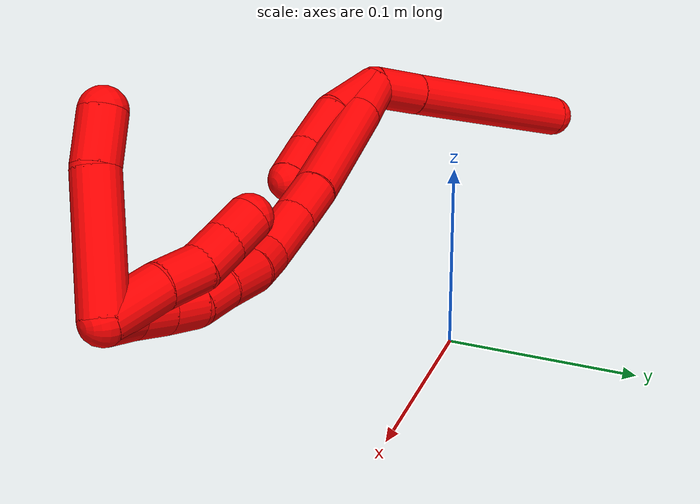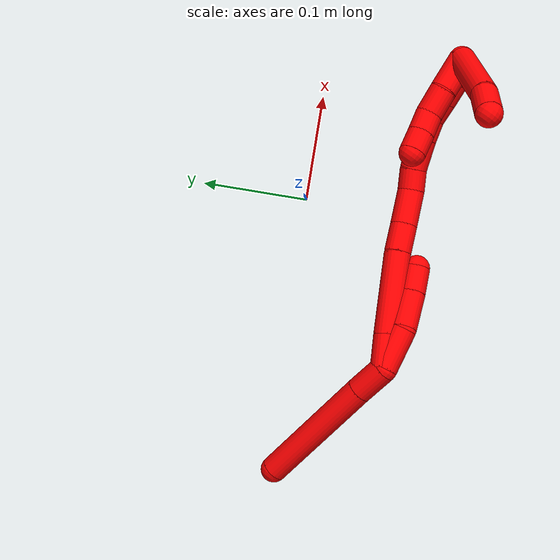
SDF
<sdf version="1.7">
 <world name="default">
  <model name="2">
   <static>0</static>
   <link name="2">
    <collision name="collision-cylinder-e_1_2_8">
     <pose>-0.0023 -0.004841 -0.014967 2.82876 -0.145167 -0.864034</pose>
     <geometry><cylinder><radius>0.0125</radius><length>0.031795</length></cylinder></geometry>
     <surface>
      <friction><ode><mu>1.16</mu><mu2>1.16</mu2><slip1>0</slip1><slip2>0</slip2></ode></friction>
      <contact><ode><kp>1e+06</kp><kd>1</kd><max_vel>0</max_vel><min_depth>0.001</min_depth></ode></contact>
     </surface>
    </collision>
    <visual name="visual-cylinder-e_1_2_8">
     <pose>-0.0023 -0.004841 -0.014967 2.82876 -0.145167 -0.864034</pose>
     <geometry><cylinder><radius>0.0125</radius><length>0.031795</length></cylinder></geometry>
     <material><ambient>1 0 0 1</ambient></material>
    </visual>
    <collision name="collision-cylinder-e_2_8_6">
     <pose>-0.013778 -0.026196 -0.085935 2.85483 -0.155931 -0.992013</pose>
     <geometry><cylinder><radius>0.0125</radius><length>0.118205</length></cylinder></geometry>
     <surface>
      <friction><ode><mu>1.16</mu><mu2>1.16</mu2><slip1>0</slip1><slip2>0</slip2></ode></friction>
      <contact><ode><kp>1e+06</kp><kd>1</kd><max_vel>0</max_vel><min_depth>0.001</min_depth></ode></contact>
     </surface>
    </collision>
    <visual name="visual-cylinder-e_2_8_6">
     <pose>-0.013778 -0.026196 -0.085935 2.85483 -0.155931 -0.992013</pose>
     <geometry><cylinder><radius>0.0125</radius><length>0.118205</length></cylinder></geometry>
     <material><ambient>1 0 0 1</ambient></material>
    </visual>
    <collision name="collision-cylinder-e_1_2_9">
     <pose>-0.001715 -0.004533 0.019558 0.227773 -0.085232 -0.009755</pose>
     <geometry><cylinder><radius>0.0125</radius><length>0.040299</length></cylinder></geometry>
     <surface>
      <friction><ode><mu>1.16</mu><mu2>1.16</mu2><slip1>0</slip1><slip2>0</slip2></ode></friction>
      <contact><ode><kp>1e+06</kp><kd>1</kd><max_vel>0</max_vel><min_depth>0.001</min_depth></ode></contact>
     </surface>
    </collision>
    <visual name="visual-cylinder-e_1_2_9">
     <pose>-0.001715 -0.004533 0.019558 0.227773 -0.085232 -0.009755</pose>
     <geometry><cylinder><radius>0.0125</radius><length>0.040299</length></cylinder></geometry>
     <material><ambient>1 0 0 1</ambient></material>
    </visual>
    <collision name="collision-cylinder-e_2_9_10">
     <pose>-0.006726 -0.017403 0.054215 0.504461 -0.188785 -0.048789</pose>
     <geometry><cylinder><radius>0.0125</radius><length>0.035118</length></cylinder></geometry>
     <surface>
      <friction><ode><mu>1.16</mu><mu2>1.16</mu2><slip1>0</slip1><slip2>0</slip2></ode></friction>
      <contact><ode><kp>1e+06</kp><kd>1</kd><max_vel>0</max_vel><min_depth>0.001</min_depth></ode></contact>
     </surface>
    </collision>
    <visual name="visual-cylinder-e_2_9_10">
     <pose>-0.006726 -0.017403 0.054215 0.504461 -0.188785 -0.048789</pose>
     <geometry><cylinder><radius>0.0125</radius><length>0.035118</length></cylinder></geometry>
     <material><ambient>1 0 0 1</ambient></material>
    </visual>
    <collision name="collision-cylinder-e_3_10_5">
     <pose>-0.011594 -0.032006 0.079769 0.53995 -0.128357 -0.035566</pose>
     <geometry><cylinder><radius>0.0125</radius><length>0.024583</length></cylinder></geometry>
     <surface>
      <friction><ode><mu>1.16</mu><mu2>1.16</mu2><slip1>0</slip1><slip2>0</slip2></ode></friction>
      <contact><ode><kp>1e+06</kp><kd>1</kd><max_vel>0</max_vel><min_depth>0.001</min_depth></ode></contact>
     </surface>
    </collision>
    <visual name="visual-cylinder-e_3_10_5">
     <pose>-0.011594 -0.032006 0.079769 0.53995 -0.128357 -0.035566</pose>
     <geometry><cylinder><radius>0.0125</radius><length>0.024583</length></cylinder></geometry>
     <material><ambient>1 0 0 1</ambient></material>
    </visual>
    <collision name="collision-cylinder-e_1_2_11">
     <pose>-0.000187 -0.00842 0.012862 0.579632 -0.012146 -0.003622</pose>
     <geometry><cylinder><radius>0.0125</radius><length>0.030747</length></cylinder></geometry>
     <surface>
      <friction><ode><mu>1.16</mu><mu2>1.16</mu2><slip1>0</slip1><slip2>0</slip2></ode></friction>
      <contact><ode><kp>1e+06</kp><kd>1</kd><max_vel>0</max_vel><min_depth>0.001</min_depth></ode></contact>
     </surface>
    </collision>
    <visual name="visual-cylinder-e_1_2_11">
     <pose>-0.000187 -0.00842 0.012862 0.579632 -0.012146 -0.003622</pose>
     <geometry><cylinder><radius>0.0125</radius><length>0.030747</length></cylinder></geometry>
     <material><ambient>1 0 0 1</ambient></material>
    </visual>
    <collision name="collision-cylinder-e_2_11_12">
     <pose>-0.000596 -0.037044 0.058814 0.548155 -0.005741 -0.001614</pose>
     <geometry><cylinder><radius>0.0125</radius><length>0.077545</length></cylinder></geometry>
     <surface>
      <friction><ode><mu>1.16</mu><mu2>1.16</mu2><slip1>0</slip1><slip2>0</slip2></ode></friction>
      <contact><ode><kp>1e+06</kp><kd>1</kd><max_vel>0</max_vel><min_depth>0.001</min_depth></ode></contact>
     </surface>
    </collision>
    <visual name="visual-cylinder-e_2_11_12">
     <pose>-0.000596 -0.037044 0.058814 0.548155 -0.005741 -0.001614</pose>
     <geometry><cylinder><radius>0.0125</radius><length>0.077545</length></cylinder></geometry>
     <material><ambient>1 0 0 1</ambient></material>
    </visual>
    <collision name="collision-cylinder-e_3_12_13">
     <pose>-0.001806 -0.063425 0.103695 0.482609 -0.07401 -0.018222</pose>
     <geometry><cylinder><radius>0.0125</radius><length>0.026693</length></cylinder></geometry>
     <surface>
      <friction><ode><mu>1.16</mu><mu2>1.16</mu2><slip1>0</slip1><slip2>0</slip2></ode></friction>
      <contact><ode><kp>1e+06</kp><kd>1</kd><max_vel>0</max_vel><min_depth>0.001</min_depth></ode></contact>
     </surface>
    </collision>
    <visual name="visual-cylinder-e_3_12_13">
     <pose>-0.001806 -0.063425 0.103695 0.482609 -0.07401 -0.018222</pose>
     <geometry><cylinder><radius>0.0125</radius><length>0.026693</length></cylinder></geometry>
     <material><ambient>1 0 0 1</ambient></material>
    </visual>
    <collision name="collision-cylinder-e_4_13_14">
     <pose>-0.003319 -0.077287 0.130559 0.471426 -0.031128 -0.007477</pose>
     <geometry><cylinder><radius>0.0125</radius><length>0.033856</length></cylinder></geometry>
     <surface>
      <friction><ode><mu>1.16</mu><mu2>1.16</mu2><slip1>0</slip1><slip2>0</slip2></ode></friction>
      <contact><ode><kp>1e+06</kp><kd>1</kd><max_vel>0</max_vel><min_depth>0.001</min_depth></ode></contact>
     </surface>
    </collision>
    <visual name="visual-cylinder-e_4_13_14">
     <pose>-0.003319 -0.077287 0.130559 0.471426 -0.031128 -0.007477</pose>
     <geometry><cylinder><radius>0.0125</radius><length>0.033856</length></cylinder></geometry>
     <material><ambient>1 0 0 1</ambient></material>
    </visual>
    <collision name="collision-cylinder-e_5_14_15">
     <pose>-0.001396 -0.089334 0.1546 0.45286 0.24091 0.055757</pose>
     <geometry><cylinder><radius>0.0125</radius><length>0.020537</length></cylinder></geometry>
     <surface>
      <friction><ode><mu>1.16</mu><mu2>1.16</mu2><slip1>0</slip1><slip2>0</slip2></ode></friction>
      <contact><ode><kp>1e+06</kp><kd>1</kd><max_vel>0</max_vel><min_depth>0.001</min_depth></ode></contact>
     </surface>
    </collision>
    <visual name="visual-cylinder-e_5_14_15">
     <pose>-0.001396 -0.089334 0.1546 0.45286 0.24091 0.055757</pose>
     <geometry><cylinder><radius>0.0125</radius><length>0.020537</length></cylinder></geometry>
     <material><ambient>1 0 0 1</ambient></material>
    </visual>
    <collision name="collision-cylinder-e_6_15_16">
     <pose>0.004108 -0.097032 0.177311 0.238008 0.212705 0.025528</pose>
     <geometry><cylinder><radius>0.0125</radius><length>0.028938</length></cylinder></geometry>
     <surface>
      <friction><ode><mu>1.16</mu><mu2>1.16</mu2><slip1>0</slip1><slip2>0</slip2></ode></friction>
      <contact><ode><kp>1e+06</kp><kd>1</kd><max_vel>0</max_vel><min_depth>0.001</min_depth></ode></contact>
     </surface>
    </collision>
    <visual name="visual-cylinder-e_6_15_16">
     <pose>0.004108 -0.097032 0.177311 0.238008 0.212705 0.025528</pose>
     <geometry><cylinder><radius>0.0125</radius><length>0.028938</length></cylinder></geometry>
     <material><ambient>1 0 0 1</ambient></material>
    </visual>
    <collision name="collision-cylinder-e_7_16_17">
     <pose>0.007797 -0.102804 0.200973 0.240988 0.062063 0.007517</pose>
     <geometry><cylinder><radius>0.0125</radius><length>0.020465</length></cylinder></geometry>
     <surface>
      <friction><ode><mu>1.16</mu><mu2>1.16</mu2><slip1>0</slip1><slip2>0</slip2></ode></friction>
      <contact><ode><kp>1e+06</kp><kd>1</kd><max_vel>0</max_vel><min_depth>0.001</min_depth></ode></contact>
     </surface>
    </collision>
    <visual name="visual-cylinder-e_7_16_17">
     <pose>0.007797 -0.102804 0.200973 0.240988 0.062063 0.007517</pose>
     <geometry><cylinder><radius>0.0125</radius><length>0.020465</length></cylinder></geometry>
     <material><ambient>1 0 0 1</ambient></material>
    </visual>
    <collision name="collision-cylinder-e_8_17_18">
     <pose>0.009822 -0.104798 0.220855 -0.044474 0.138479 -0.003085</pose>
     <geometry><cylinder><radius>0.0125</radius><length>0.020139</length></cylinder></geometry>
     <surface>
      <friction><ode><mu>1.16</mu><mu2>1.16</mu2><slip1>0</slip1><slip2>0</slip2></ode></friction>
      <contact><ode><kp>1e+06</kp><kd>1</kd><max_vel>0</max_vel><min_depth>0.001</min_depth></ode></contact>
     </surface>
    </collision>
    <visual name="visual-cylinder-e_8_17_18">
     <pose>0.009822 -0.104798 0.220855 -0.044474 0.138479 -0.003085</pose>
     <geometry><cylinder><radius>0.0125</radius><length>0.020139</length></cylinder></geometry>
     <material><ambient>1 0 0 1</ambient></material>
    </visual>
    <collision name="collision-cylinder-e_9_18_19">
     <pose>0.013251 -0.103828 0.240702 -0.053186 0.203131 -0.005422</pose>
     <geometry><cylinder><radius>0.0125</radius><length>0.020212</length></cylinder></geometry>
     <surface>
      <friction><ode><mu>1.16</mu><mu2>1.16</mu2><slip1>0</slip1><slip2>0</slip2></ode></friction>
      <contact><ode><kp>1e+06</kp><kd>1</kd><max_vel>0</max_vel><min_depth>0.001</min_depth></ode></contact>
     </surface>
    </collision>
    <visual name="visual-cylinder-e_9_18_19">
     <pose>0.013251 -0.103828 0.240702 -0.053186 0.203131 -0.005422</pose>
     <geometry><cylinder><radius>0.0125</radius><length>0.020212</length></cylinder></geometry>
     <material><ambient>1 0 0 1</ambient></material>
    </visual>
    <collision name="collision-cylinder-e_10_19_1">
     <pose>0.019134 -0.104596 0.260199 0.133863 0.377407 0.025601</pose>
     <geometry><cylinder><radius>0.0125</radius><length>0.020868</length></cylinder></geometry>
     <surface>
      <friction><ode><mu>1.16</mu><mu2>1.16</mu2><slip1>0</slip1><slip2>0</slip2></ode></friction>
      <contact><ode><kp>1e+06</kp><kd>1</kd><max_vel>0</max_vel><min_depth>0.001</min_depth></ode></contact>
     </surface>
    </collision>
    <visual name="visual-cylinder-e_10_19_1">
     <pose>0.019134 -0.104596 0.260199 0.133863 0.377407 0.025601</pose>
     <geometry><cylinder><radius>0.0125</radius><length>0.020868</length></cylinder></geometry>
     <material><ambient>1 0 0 1</ambient></material>
    </visual>
    <collision name="collision-cylinder-e_1_1_20">
     <pose>0.025471 -0.103311 0.253329 -2.9863 0.148255 -1.52428</pose>
     <geometry><cylinder><radius>0.0125</radius><length>0.033737</length></cylinder></geometry>
     <surface>
      <friction><ode><mu>1.16</mu><mu2>1.16</mu2><slip1>0</slip1><slip2>0</slip2></ode></friction>
      <contact><ode><kp>1e+06</kp><kd>1</kd><max_vel>0</max_vel><min_depth>0.001</min_depth></ode></contact>
     </surface>
    </collision>
    <visual name="visual-cylinder-e_1_1_20">
     <pose>0.025471 -0.103311 0.253329 -2.9863 0.148255 -1.52428</pose>
     <geometry><cylinder><radius>0.0125</radius><length>0.033737</length></cylinder></geometry>
     <material><ambient>1 0 0 1</ambient></material>
    </visual>
    <collision name="collision-cylinder-e_2_20_21">
     <pose>0.028195 -0.099437 0.224056 -3.04086 0.018031 -0.353971</pose>
     <geometry><cylinder><radius>0.0125</radius><length>0.025715</length></cylinder></geometry>
     <surface>
      <friction><ode><mu>1.16</mu><mu2>1.16</mu2><slip1>0</slip1><slip2>0</slip2></ode></friction>
      <contact><ode><kp>1e+06</kp><kd>1</kd><max_vel>0</max_vel><min_depth>0.001</min_depth></ode></contact>
     </surface>
    </collision>
    <visual name="visual-cylinder-e_2_20_21">
     <pose>0.028195 -0.099437 0.224056 -3.04086 0.018031 -0.353971</pose>
     <geometry><cylinder><radius>0.0125</radius><length>0.025715</length></cylinder></geometry>
     <material><ambient>1 0 0 1</ambient></material>
    </visual>
    <collision name="collision-cylinder-e_3_21_22">
     <pose>0.030218 -0.09473 0.201882 -2.79263 0.177544 -0.935173</pose>
     <geometry><cylinder><radius>0.0125</radius><length>0.020291</length></cylinder></geometry>
     <surface>
      <friction><ode><mu>1.16</mu><mu2>1.16</mu2><slip1>0</slip1><slip2>0</slip2></ode></friction>
      <contact><ode><kp>1e+06</kp><kd>1</kd><max_vel>0</max_vel><min_depth>0.001</min_depth></ode></contact>
     </surface>
    </collision>
    <visual name="visual-cylinder-e_3_21_22">
     <pose>0.030218 -0.09473 0.201882 -2.79263 0.177544 -0.935173</pose>
     <geometry><cylinder><radius>0.0125</radius><length>0.020291</length></cylinder></geometry>
     <material><ambient>1 0 0 1</ambient></material>
    </visual>
    <collision name="collision-cylinder-e_4_22_4">
     <pose>0.034352 -0.087941 0.18324 -2.79204 0.233295 -1.17178</pose>
     <geometry><cylinder><radius>0.0125</radius><length>0.020257</length></cylinder></geometry>
     <surface>
      <friction><ode><mu>1.16</mu><mu2>1.16</mu2><slip1>0</slip1><slip2>0</slip2></ode></friction>
      <contact><ode><kp>1e+06</kp><kd>1</kd><max_vel>0</max_vel><min_depth>0.001</min_depth></ode></contact>
     </surface>
    </collision>
    <visual name="visual-cylinder-e_4_22_4">
     <pose>0.034352 -0.087941 0.18324 -2.79204 0.233295 -1.17178</pose>
     <geometry><cylinder><radius>0.0125</radius><length>0.020257</length></cylinder></geometry>
     <material><ambient>1 0 0 1</ambient></material>
    </visual>
    <collision name="collision-cylinder-e_1_1_23">
     <pose>0.040868 -0.07662 0.259756 -1.90171 0.524074 -0.718824</pose>
     <geometry><cylinder><radius>0.0125</radius><length>0.071495</length></cylinder></geometry>
     <surface>
      <friction><ode><mu>1.16</mu><mu2>1.16</mu2><slip1>0</slip1><slip2>0</slip2></ode></friction>
      <contact><ode><kp>1e+06</kp><kd>1</kd><max_vel>0</max_vel><min_depth>0.001</min_depth></ode></contact>
     </surface>
    </collision>
    <visual name="visual-cylinder-e_1_1_23">
     <pose>0.040868 -0.07662 0.259756 -1.90171 0.524074 -0.718824</pose>
     <geometry><cylinder><radius>0.0125</radius><length>0.071495</length></cylinder></geometry>
     <material><ambient>1 0 0 1</ambient></material>
    </visual>
    <collision name="collision-cylinder-e_2_23_3">
     <pose>0.065364 -0.036582 0.243103 -2.12045 0.482088 -0.827145</pose>
     <geometry><cylinder><radius>0.0125</radius><length>0.028505</length></cylinder></geometry>
     <surface>
      <friction><ode><mu>1.16</mu><mu2>1.16</mu2><slip1>0</slip1><slip2>0</slip2></ode></friction>
      <contact><ode><kp>1e+06</kp><kd>1</kd><max_vel>0</max_vel><min_depth>0.001</min_depth></ode></contact>
     </surface>
    </collision>
    <visual name="visual-cylinder-e_2_23_3">
     <pose>0.065364 -0.036582 0.243103 -2.12045 0.482088 -0.827145</pose>
     <geometry><cylinder><radius>0.0125</radius><length>0.028505</length></cylinder></geometry>
     <material><ambient>1 0 0 1</ambient></material>
    </visual>
    <collision name="collision-sphere-3">
     <pose>0.071972 -0.025814 0.236506 0 -0 0</pose>
     <geometry><sphere><radius>0.0125</radius></sphere></geometry>
     <surface>
      <friction><ode><mu>1.16</mu><mu2>1.16</mu2><slip1>0</slip1><slip2>0</slip2></ode></friction>
      <contact><ode><kp>1e+06</kp><kd>1</kd><max_vel>0</max_vel><min_depth>0.001</min_depth></ode></contact>
     </surface>
    </collision>
    <visual name="visual-sphere-3">
     <pose>0.071972 -0.025814 0.236506 0 -0 0</pose>
     <geometry><sphere><radius>0.0125</radius></sphere></geometry>
     <material><ambient>1 0 0 1</ambient></material>
    </visual>
    <collision name="collision-sphere-23">
     <pose>0.058756 -0.04735 0.2497 0 -0 0</pose>
     <geometry><sphere><radius>0.0125</radius></sphere></geometry>
     <surface>
      <friction><ode><mu>1.16</mu><mu2>1.16</mu2><slip1>0</slip1><slip2>0</slip2></ode></friction>
      <contact><ode><kp>1e+06</kp><kd>1</kd><max_vel>0</max_vel><min_depth>0.001</min_depth></ode></contact>
     </surface>
    </collision>
    <visual name="visual-sphere-23">
     <pose>0.058756 -0.04735 0.2497 0 -0 0</pose>
     <geometry><sphere><radius>0.0125</radius></sphere></geometry>
     <material><ambient>1 0 0 1</ambient></material>
    </visual>
    <collision name="collision-sphere-4">
     <pose>0.036693 -0.084566 0.173981 0 -0 0</pose>
     <geometry><sphere><radius>0.0125</radius></sphere></geometry>
     <surface>
      <friction><ode><mu>1.16</mu><mu2>1.16</mu2><slip1>0</slip1><slip2>0</slip2></ode></friction>
      <contact><ode><kp>1e+06</kp><kd>1</kd><max_vel>0</max_vel><min_depth>0.001</min_depth></ode></contact>
     </surface>
    </collision>
    <visual name="visual-sphere-4">
     <pose>0.036693 -0.084566 0.173981 0 -0 0</pose>
     <geometry><sphere><radius>0.0125</radius></sphere></geometry>
     <material><ambient>1 0 0 1</ambient></material>
    </visual>
    <collision name="collision-sphere-22">
     <pose>0.03201 -0.091316 0.192498 0 -0 0</pose>
     <geometry><sphere><radius>0.0125</radius></sphere></geometry>
     <surface>
      <friction><ode><mu>1.16</mu><mu2>1.16</mu2><slip1>0</slip1><slip2>0</slip2></ode></friction>
      <contact><ode><kp>1e+06</kp><kd>1</kd><max_vel>0</max_vel><min_depth>0.001</min_depth></ode></contact>
     </surface>
    </collision>
    <visual name="visual-sphere-22">
     <pose>0.03201 -0.091316 0.192498 0 -0 0</pose>
     <geometry><sphere><radius>0.0125</radius></sphere></geometry>
     <material><ambient>1 0 0 1</ambient></material>
    </visual>
    <collision name="collision-sphere-21">
     <pose>0.028426 -0.098145 0.211266 0 -0 0</pose>
     <geometry><sphere><radius>0.0125</radius></sphere></geometry>
     <surface>
      <friction><ode><mu>1.16</mu><mu2>1.16</mu2><slip1>0</slip1><slip2>0</slip2></ode></friction>
      <contact><ode><kp>1e+06</kp><kd>1</kd><max_vel>0</max_vel><min_depth>0.001</min_depth></ode></contact>
     </surface>
    </collision>
    <visual name="visual-sphere-21">
     <pose>0.028426 -0.098145 0.211266 0 -0 0</pose>
     <geometry><sphere><radius>0.0125</radius></sphere></geometry>
     <material><ambient>1 0 0 1</ambient></material>
    </visual>
    <collision name="collision-sphere-20">
     <pose>0.027963 -0.10073 0.236847 0 -0 0</pose>
     <geometry><sphere><radius>0.0125</radius></sphere></geometry>
     <surface>
      <friction><ode><mu>1.16</mu><mu2>1.16</mu2><slip1>0</slip1><slip2>0</slip2></ode></friction>
      <contact><ode><kp>1e+06</kp><kd>1</kd><max_vel>0</max_vel><min_depth>0.001</min_depth></ode></contact>
     </surface>
    </collision>
    <visual name="visual-sphere-20">
     <pose>0.027963 -0.10073 0.236847 0 -0 0</pose>
     <geometry><sphere><radius>0.0125</radius></sphere></geometry>
     <material><ambient>1 0 0 1</ambient></material>
    </visual>
    <collision name="collision-sphere-5">
     <pose>-0.013168 -0.038273 0.090225 0 -0 0</pose>
     <geometry><sphere><radius>0.0125</radius></sphere></geometry>
     <surface>
      <friction><ode><mu>1.16</mu><mu2>1.16</mu2><slip1>0</slip1><slip2>0</slip2></ode></friction>
      <contact><ode><kp>1e+06</kp><kd>1</kd><max_vel>0</max_vel><min_depth>0.001</min_depth></ode></contact>
     </surface>
    </collision>
    <visual name="visual-sphere-5">
     <pose>-0.013168 -0.038273 0.090225 0 -0 0</pose>
     <geometry><sphere><radius>0.0125</radius></sphere></geometry>
     <material><ambient>1 0 0 1</ambient></material>
    </visual>
    <collision name="collision-sphere-10">
     <pose>-0.010021 -0.025739 0.069313 0 -0 0</pose>
     <geometry><sphere><radius>0.0125</radius></sphere></geometry>
     <surface>
      <friction><ode><mu>1.16</mu><mu2>1.16</mu2><slip1>0</slip1><slip2>0</slip2></ode></friction>
      <contact><ode><kp>1e+06</kp><kd>1</kd><max_vel>0</max_vel><min_depth>0.001</min_depth></ode></contact>
     </surface>
    </collision>
    <visual name="visual-sphere-10">
     <pose>-0.010021 -0.025739 0.069313 0 -0 0</pose>
     <geometry><sphere><radius>0.0125</radius></sphere></geometry>
     <material><ambient>1 0 0 1</ambient></material>
    </visual>
    <collision name="collision-sphere-6">
     <pose>-0.022957 -0.042711 -0.141936 0 -0 0</pose>
     <geometry><sphere><radius>0.0125</radius></sphere></geometry>
     <surface>
      <friction><ode><mu>1.16</mu><mu2>1.16</mu2><slip1>0</slip1><slip2>0</slip2></ode></friction>
      <contact><ode><kp>1e+06</kp><kd>1</kd><max_vel>0</max_vel><min_depth>0.001</min_depth></ode></contact>
     </surface>
    </collision>
    <visual name="visual-sphere-6">
     <pose>-0.022957 -0.042711 -0.141936 0 -0 0</pose>
     <geometry><sphere><radius>0.0125</radius></sphere></geometry>
     <material><ambient>1 0 0 1</ambient></material>
    </visual>
    <collision name="collision-sphere-9">
     <pose>-0.003431 -0.009067 0.039116 0 -0 0</pose>
     <geometry><sphere><radius>0.0125</radius></sphere></geometry>
     <surface>
      <friction><ode><mu>1.16</mu><mu2>1.16</mu2><slip1>0</slip1><slip2>0</slip2></ode></friction>
      <contact><ode><kp>1e+06</kp><kd>1</kd><max_vel>0</max_vel><min_depth>0.001</min_depth></ode></contact>
     </surface>
    </collision>
    <visual name="visual-sphere-9">
     <pose>-0.003431 -0.009067 0.039116 0 -0 0</pose>
     <geometry><sphere><radius>0.0125</radius></sphere></geometry>
     <material><ambient>1 0 0 1</ambient></material>
    </visual>
    <collision name="collision-sphere-2">
     <geometry><sphere><radius>0.0125</radius></sphere></geometry>
     <surface>
      <friction><ode><mu>1.16</mu><mu2>1.16</mu2><slip1>0</slip1><slip2>0</slip2></ode></friction>
      <contact><ode><kp>1e+06</kp><kd>1</kd><max_vel>0</max_vel><min_depth>0.001</min_depth></ode></contact>
     </surface>
    </collision>
    <visual name="visual-sphere-2">
     <geometry><sphere><radius>0.0125</radius></sphere></geometry>
     <material><ambient>1 0 0 1</ambient></material>
    </visual>
    <collision name="collision-sphere-19">
     <pose>0.015289 -0.103302 0.250586 0 -0 0</pose>
     <geometry><sphere><radius>0.0125</radius></sphere></geometry>
     <surface>
      <friction><ode><mu>1.16</mu><mu2>1.16</mu2><slip1>0</slip1><slip2>0</slip2></ode></friction>
      <contact><ode><kp>1e+06</kp><kd>1</kd><max_vel>0</max_vel><min_depth>0.001</min_depth></ode></contact>
     </surface>
    </collision>
    <visual name="visual-sphere-19">
     <pose>0.015289 -0.103302 0.250586 0 -0 0</pose>
     <geometry><sphere><radius>0.0125</radius></sphere></geometry>
     <material><ambient>1 0 0 1</ambient></material>
    </visual>
    <collision name="collision-sphere-8">
     <pose>-0.004599 -0.009682 -0.029933 0 -0 0</pose>
     <geometry><sphere><radius>0.0125</radius></sphere></geometry>
     <surface>
      <friction><ode><mu>1.16</mu><mu2>1.16</mu2><slip1>0</slip1><slip2>0</slip2></ode></friction>
      <contact><ode><kp>1e+06</kp><kd>1</kd><max_vel>0</max_vel><min_depth>0.001</min_depth></ode></contact>
     </surface>
    </collision>
    <visual name="visual-sphere-8">
     <pose>-0.004599 -0.009682 -0.029933 0 -0 0</pose>
     <geometry><sphere><radius>0.0125</radius></sphere></geometry>
     <material><ambient>1 0 0 1</ambient></material>
    </visual>
    <collision name="collision-sphere-11">
     <pose>-0.000373 -0.016839 0.025723 0 -0 0</pose>
     <geometry><sphere><radius>0.0125</radius></sphere></geometry>
     <surface>
      <friction><ode><mu>1.16</mu><mu2>1.16</mu2><slip1>0</slip1><slip2>0</slip2></ode></friction>
      <contact><ode><kp>1e+06</kp><kd>1</kd><max_vel>0</max_vel><min_depth>0.001</min_depth></ode></contact>
     </surface>
    </collision>
    <visual name="visual-sphere-11">
     <pose>-0.000373 -0.016839 0.025723 0 -0 0</pose>
     <geometry><sphere><radius>0.0125</radius></sphere></geometry>
     <material><ambient>1 0 0 1</ambient></material>
    </visual>
    <collision name="collision-sphere-12">
     <pose>-0.000819 -0.057248 0.091906 0 -0 0</pose>
     <geometry><sphere><radius>0.0125</radius></sphere></geometry>
     <surface>
      <friction><ode><mu>1.16</mu><mu2>1.16</mu2><slip1>0</slip1><slip2>0</slip2></ode></friction>
      <contact><ode><kp>1e+06</kp><kd>1</kd><max_vel>0</max_vel><min_depth>0.001</min_depth></ode></contact>
     </surface>
    </collision>
    <visual name="visual-sphere-12">
     <pose>-0.000819 -0.057248 0.091906 0 -0 0</pose>
     <geometry><sphere><radius>0.0125</radius></sphere></geometry>
     <material><ambient>1 0 0 1</ambient></material>
    </visual>
    <collision name="collision-sphere-13">
     <pose>-0.002792 -0.069602 0.115485 0 -0 0</pose>
     <geometry><sphere><radius>0.0125</radius></sphere></geometry>
     <surface>
      <friction><ode><mu>1.16</mu><mu2>1.16</mu2><slip1>0</slip1><slip2>0</slip2></ode></friction>
      <contact><ode><kp>1e+06</kp><kd>1</kd><max_vel>0</max_vel><min_depth>0.001</min_depth></ode></contact>
     </surface>
    </collision>
    <visual name="visual-sphere-13">
     <pose>-0.002792 -0.069602 0.115485 0 -0 0</pose>
     <geometry><sphere><radius>0.0125</radius></sphere></geometry>
     <material><ambient>1 0 0 1</ambient></material>
    </visual>
    <collision name="collision-sphere-14">
     <pose>-0.003846 -0.084971 0.145634 0 -0 0</pose>
     <geometry><sphere><radius>0.0125</radius></sphere></geometry>
     <surface>
      <friction><ode><mu>1.16</mu><mu2>1.16</mu2><slip1>0</slip1><slip2>0</slip2></ode></friction>
      <contact><ode><kp>1e+06</kp><kd>1</kd><max_vel>0</max_vel><min_depth>0.001</min_depth></ode></contact>
     </surface>
    </collision>
    <visual name="visual-sphere-14">
     <pose>-0.003846 -0.084971 0.145634 0 -0 0</pose>
     <geometry><sphere><radius>0.0125</radius></sphere></geometry>
     <material><ambient>1 0 0 1</ambient></material>
    </visual>
    <collision name="collision-sphere-15">
     <pose>0.001054 -0.093697 0.163567 0 -0 0</pose>
     <geometry><sphere><radius>0.0125</radius></sphere></geometry>
     <surface>
      <friction><ode><mu>1.16</mu><mu2>1.16</mu2><slip1>0</slip1><slip2>0</slip2></ode></friction>
      <contact><ode><kp>1e+06</kp><kd>1</kd><max_vel>0</max_vel><min_depth>0.001</min_depth></ode></contact>
     </surface>
    </collision>
    <visual name="visual-sphere-15">
     <pose>0.001054 -0.093697 0.163567 0 -0 0</pose>
     <geometry><sphere><radius>0.0125</radius></sphere></geometry>
     <material><ambient>1 0 0 1</ambient></material>
    </visual>
    <collision name="collision-sphere-16">
     <pose>0.007163 -0.100366 0.191056 0 -0 0</pose>
     <geometry><sphere><radius>0.0125</radius></sphere></geometry>
     <surface>
      <friction><ode><mu>1.16</mu><mu2>1.16</mu2><slip1>0</slip1><slip2>0</slip2></ode></friction>
      <contact><ode><kp>1e+06</kp><kd>1</kd><max_vel>0</max_vel><min_depth>0.001</min_depth></ode></contact>
     </surface>
    </collision>
    <visual name="visual-sphere-16">
     <pose>0.007163 -0.100366 0.191056 0 -0 0</pose>
     <geometry><sphere><radius>0.0125</radius></sphere></geometry>
     <material><ambient>1 0 0 1</ambient></material>
    </visual>
    <collision name="collision-sphere-17">
     <pose>0.008432 -0.105241 0.210891 0 -0 0</pose>
     <geometry><sphere><radius>0.0125</radius></sphere></geometry>
     <surface>
      <friction><ode><mu>1.16</mu><mu2>1.16</mu2><slip1>0</slip1><slip2>0</slip2></ode></friction>
      <contact><ode><kp>1e+06</kp><kd>1</kd><max_vel>0</max_vel><min_depth>0.001</min_depth></ode></contact>
     </surface>
    </collision>
    <visual name="visual-sphere-17">
     <pose>0.008432 -0.105241 0.210891 0 -0 0</pose>
     <geometry><sphere><radius>0.0125</radius></sphere></geometry>
     <material><ambient>1 0 0 1</ambient></material>
    </visual>
    <collision name="collision-sphere-18">
     <pose>0.011212 -0.104354 0.230818 0 -0 0</pose>
     <geometry><sphere><radius>0.0125</radius></sphere></geometry>
     <surface>
      <friction><ode><mu>1.16</mu><mu2>1.16</mu2><slip1>0</slip1><slip2>0</slip2></ode></friction>
      <contact><ode><kp>1e+06</kp><kd>1</kd><max_vel>0</max_vel><min_depth>0.001</min_depth></ode></contact>
     </surface>
    </collision>
    <visual name="visual-sphere-18">
     <pose>0.011212 -0.104354 0.230818 0 -0 0</pose>
     <geometry><sphere><radius>0.0125</radius></sphere></geometry>
     <material><ambient>1 0 0 1</ambient></material>
    </visual>
    <collision name="collision-sphere-1">
     <pose>0.022979 -0.105891 0.269812 0 -0 0</pose>
     <geometry><sphere><radius>0.0125</radius></sphere></geometry>
     <surface>
      <friction><ode><mu>1.16</mu><mu2>1.16</mu2><slip1>0</slip1><slip2>0</slip2></ode></friction>
      <contact><ode><kp>1e+06</kp><kd>1</kd><max_vel>0</max_vel><min_depth>0.001</min_depth></ode></contact>
     </surface>
    </collision>
    <visual name="visual-sphere-1">
     <pose>0.022979 -0.105891 0.269812 0 -0 0</pose>
     <geometry><sphere><radius>0.0125</radius></sphere></geometry>
     <material><ambient>1 0 0 1</ambient></material>
    </visual>
    <inertial>
     <pose>0.008385 -0.05557 0.107923 0 -0 0</pose>
     <mass>0.75</mass>
     <inertia>
      <ixx>3.8e-05</ixx>
      <ixy>0</ixy>
      <ixz>0</ixz>
      <iyy>-0.000161</iyy>
      <iyz>0</iyz>
      <izz>5.4e-05</izz>
     </inertia>
    </inertial>
   </link>
   <pose>-0.14383 -0.095887 0.078603 1.42369 -1.06049 1.24462</pose>
  </model>
 </world>
</sdf>
